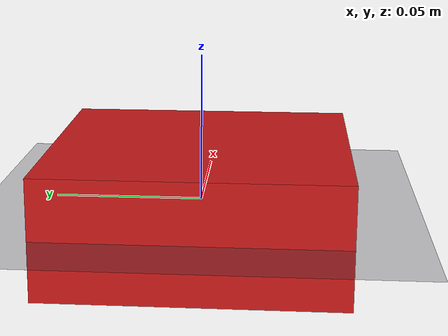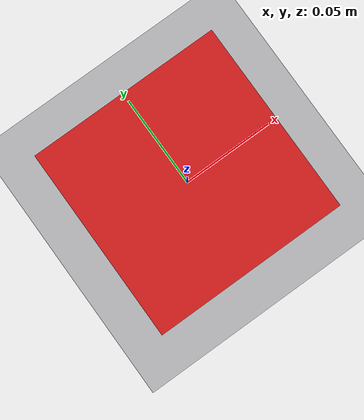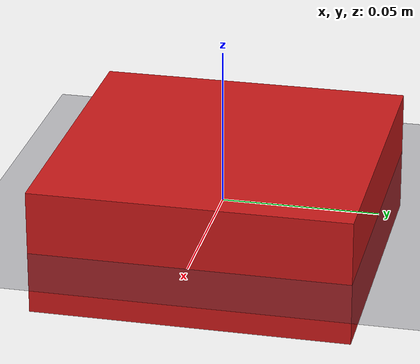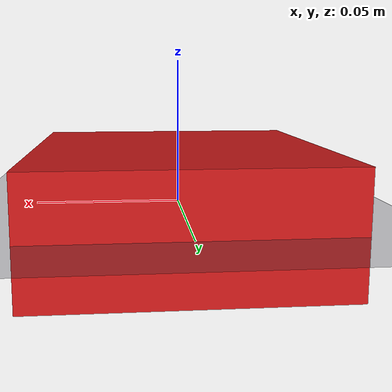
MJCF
<!-- Placeholder MJCF file for the EmbodiedAI anthropomorphic hand. Replace with the real model. -->
<mujoco model="embodiedai_hand">
  <compiler angle="degree" inertiafromgeom="false" coordinate="global" />
  <default>
    <joint damping="0.1" />
    <geom friction="0.8" solref="0.02 1" solimp="0.99 0.99 0.01" />
  </default>
  <worldbody>
    <geom name="table" type="plane" size="1 1 0.1" rgba="0.2 0.2 0.25 1" />
    <body name="base" pos="0 0 0.2">
      <geom name="base_link" type="box" size="0.05 0.05 0.02" rgba="0.8 0.1 0.1 1" />
    </body>
  </worldbody>
</mujoco>
